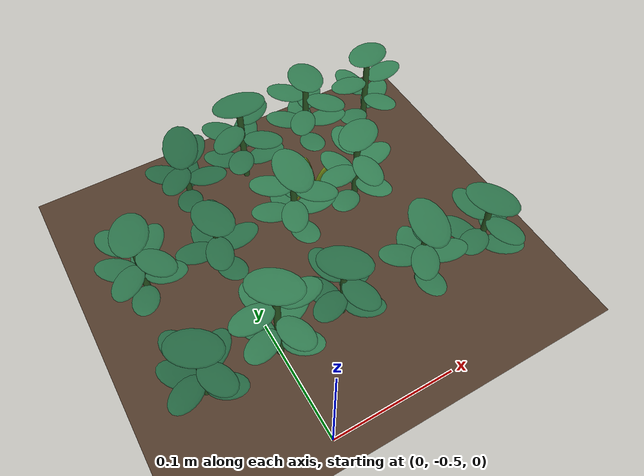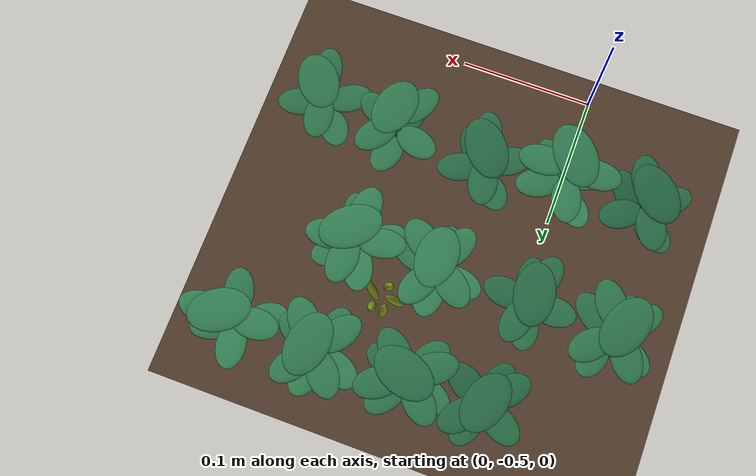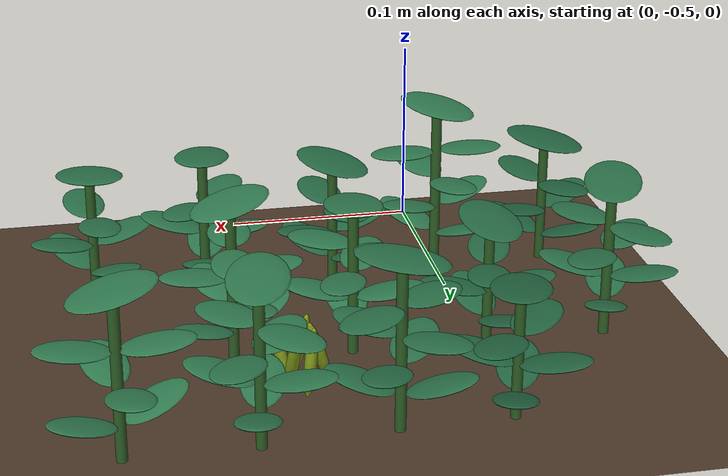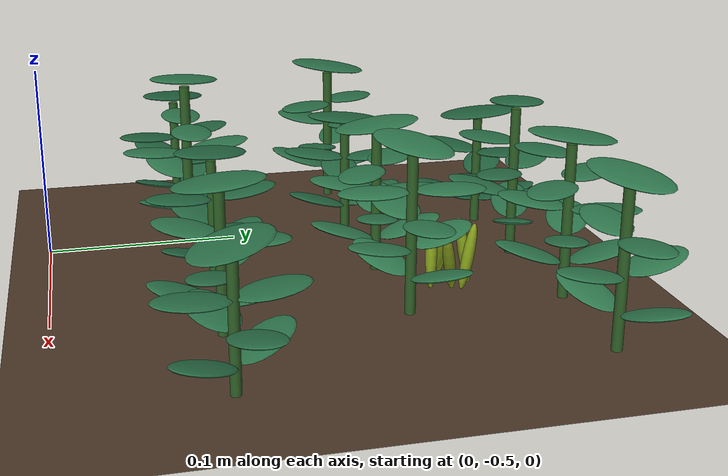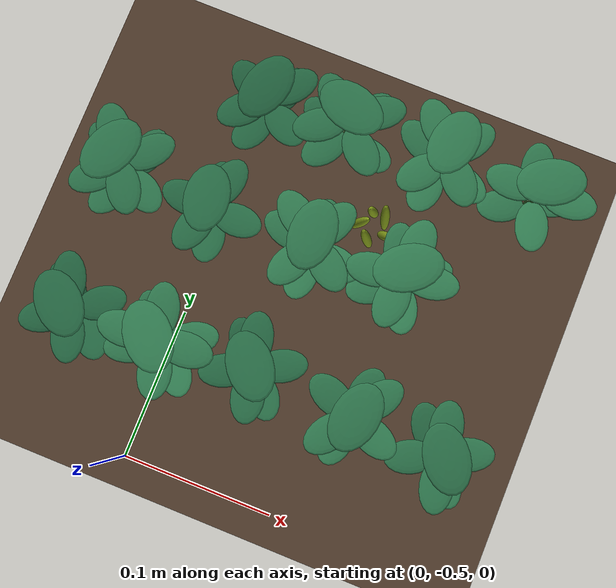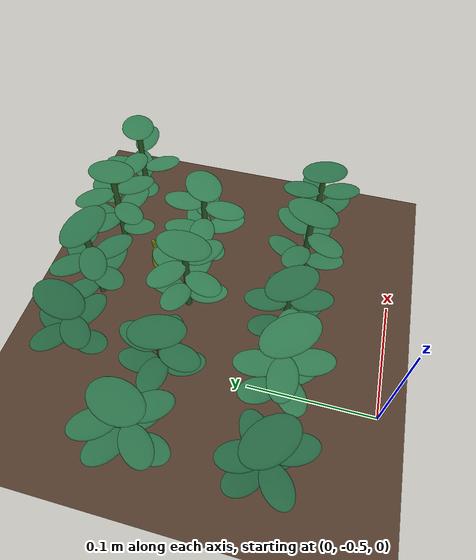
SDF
<sdf version="1.9">
 <world name="jim_field">
  <model name="ground_plane">
   <static>true</static>
   <link name="link">
    <collision name="collision">
     <geometry><plane><normal>0 0 1</normal><size>40 40</size></plane></geometry>
    </collision>
    <visual name="visual">
     <geometry><plane><normal>0 0 1</normal><size>40 40</size></plane></geometry>
     <material>
      <ambient>0.20 0.15 0.11 1</ambient>
      <diffuse>0.30 0.22 0.16 1</diffuse>
      <specular>0.01 0.01 0.01 1</specular>
     </material>
    </visual>
   </link>
  </model>
  <model name="field">
   <static>true</static>
   <pose>0.1837 -0.2516 0 0 0 0</pose>
   <model name="crop_55">
    <static>true</static>
    <pose>-0.2437 -0.1737 0 0 0 0</pose>
    <link name="link">
     <visual name="stem">
      <pose>0 0 0.0324 0 0 0</pose>
      <geometry><cylinder><radius>0.0025</radius><length>0.0649</length></cylinder></geometry>
      <material>
       <ambient>0.10 0.22 0.09 1</ambient>
       <diffuse>0.20 0.40 0.16 1</diffuse>
       <specular>0.05 0.06 0.05 1</specular>
      </material>
     </visual>
     <visual name="leaflet_0_0">
      <pose>0.0128 -0.0119 0.0195 0 -0.300 5.5353</pose>
      <geometry><ellipsoid><radii>0.0170 0.0105 0.0016</radii></ellipsoid></geometry>
      <material>
       <ambient>0.071 0.201 0.111 1</ambient>
       <diffuse>0.131 0.382 0.242 1</diffuse>
       <specular>0.05 0.06 0.05 1</specular>
      </material>
     </visual>
     <visual name="leaflet_0_1">
      <pose>-0.0128 0.0119 0.0195 0 -0.300 8.6769</pose>
      <geometry><ellipsoid><radii>0.0170 0.0105 0.0016</radii></ellipsoid></geometry>
      <material>
       <ambient>0.071 0.201 0.111 1</ambient>
       <diffuse>0.131 0.382 0.242 1</diffuse>
       <specular>0.05 0.06 0.05 1</specular>
      </material>
     </visual>
     <visual name="leaflet_1_0">
      <pose>0.0144 0.0099 0.0329 0 -0.200 6.8853</pose>
      <geometry><ellipsoid><radii>0.0170 0.0105 0.0016</radii></ellipsoid></geometry>
      <material>
       <ambient>0.071 0.201 0.111 1</ambient>
       <diffuse>0.131 0.382 0.242 1</diffuse>
       <specular>0.05 0.06 0.05 1</specular>
      </material>
     </visual>
     <visual name="leaflet_1_1">
      <pose>-0.0144 -0.0099 0.0329 0 -0.200 10.0269</pose>
      <geometry><ellipsoid><radii>0.0170 0.0105 0.0016</radii></ellipsoid></geometry>
      <material>
       <ambient>0.071 0.201 0.111 1</ambient>
       <diffuse>0.131 0.382 0.242 1</diffuse>
       <specular>0.05 0.06 0.05 1</specular>
      </material>
     </visual>
     <visual name="leaflet_2_0">
      <pose>-0.0065 0.0162 0.0463 0 -0.100 8.2353</pose>
      <geometry><ellipsoid><radii>0.0170 0.0105 0.0016</radii></ellipsoid></geometry>
      <material>
       <ambient>0.071 0.201 0.111 1</ambient>
       <diffuse>0.131 0.382 0.242 1</diffuse>
       <specular>0.05 0.06 0.05 1</specular>
      </material>
     </visual>
     <visual name="leaflet_2_1">
      <pose>0.0065 -0.0162 0.0463 0 -0.100 11.3769</pose>
      <geometry><ellipsoid><radii>0.0170 0.0105 0.0016</radii></ellipsoid></geometry>
      <material>
       <ambient>0.071 0.201 0.111 1</ambient>
       <diffuse>0.131 0.382 0.242 1</diffuse>
       <specular>0.05 0.06 0.05 1</specular>
      </material>
     </visual>
     <visual name="leaflet_terminal">
      <pose>0 0 0.0689 0 -0.12 5.5353</pose>
      <geometry><ellipsoid><radii>0.0215 0.0140 0.0018</radii></ellipsoid></geometry>
      <material>
       <ambient>0.071 0.201 0.111 1</ambient>
       <diffuse>0.131 0.382 0.242 1</diffuse>
       <specular>0.05 0.06 0.05 1</specular>
      </material>
     </visual>
    </link>
   </model>
   <model name="crop_56">
    <static>true</static>
    <pose>-0.1836 -0.1723 0 0 0 0</pose>
    <link name="link">
     <visual name="stem">
      <pose>0 0 0.0440 0 0 0</pose>
      <geometry><cylinder><radius>0.0027</radius><length>0.0879</length></cylinder></geometry>
      <material>
       <ambient>0.10 0.22 0.09 1</ambient>
       <diffuse>0.20 0.40 0.16 1</diffuse>
       <specular>0.05 0.06 0.05 1</specular>
      </material>
     </visual>
     <visual name="leaflet_0_0">
      <pose>0.0122 -0.0141 0.0264 0 -0.300 5.4263</pose>
      <geometry><ellipsoid><radii>0.0170 0.0105 0.0016</radii></ellipsoid></geometry>
      <material>
       <ambient>0.094 0.241 0.142 1</ambient>
       <diffuse>0.179 0.461 0.297 1</diffuse>
       <specular>0.05 0.06 0.05 1</specular>
      </material>
     </visual>
     <visual name="leaflet_0_1">
      <pose>-0.0122 0.0141 0.0264 0 -0.300 8.5679</pose>
      <geometry><ellipsoid><radii>0.0170 0.0105 0.0016</radii></ellipsoid></geometry>
      <material>
       <ambient>0.094 0.241 0.142 1</ambient>
       <diffuse>0.179 0.461 0.297 1</diffuse>
       <specular>0.05 0.06 0.05 1</specular>
      </material>
     </visual>
     <visual name="leaflet_1_0">
      <pose>0.0165 0.0088 0.0400 0 -0.200 6.7763</pose>
      <geometry><ellipsoid><radii>0.0170 0.0105 0.0016</radii></ellipsoid></geometry>
      <material>
       <ambient>0.094 0.241 0.142 1</ambient>
       <diffuse>0.179 0.461 0.297 1</diffuse>
       <specular>0.05 0.06 0.05 1</specular>
      </material>
     </visual>
     <visual name="leaflet_1_1">
      <pose>-0.0165 -0.0088 0.0400 0 -0.200 9.9179</pose>
      <geometry><ellipsoid><radii>0.0170 0.0105 0.0016</radii></ellipsoid></geometry>
      <material>
       <ambient>0.094 0.241 0.142 1</ambient>
       <diffuse>0.179 0.461 0.297 1</diffuse>
       <specular>0.05 0.06 0.05 1</specular>
      </material>
     </visual>
     <visual name="leaflet_2_0">
      <pose>-0.0050 0.0180 0.0536 0 -0.100 8.1263</pose>
      <geometry><ellipsoid><radii>0.0170 0.0105 0.0016</radii></ellipsoid></geometry>
      <material>
       <ambient>0.094 0.241 0.142 1</ambient>
       <diffuse>0.179 0.461 0.297 1</diffuse>
       <specular>0.05 0.06 0.05 1</specular>
      </material>
     </visual>
     <visual name="leaflet_2_1">
      <pose>0.0050 -0.0180 0.0536 0 -0.100 11.2679</pose>
      <geometry><ellipsoid><radii>0.0170 0.0105 0.0016</radii></ellipsoid></geometry>
      <material>
       <ambient>0.094 0.241 0.142 1</ambient>
       <diffuse>0.179 0.461 0.297 1</diffuse>
       <specular>0.05 0.06 0.05 1</specular>
      </material>
     </visual>
     <visual name="leaflet_3_0">
      <pose>-0.0187 -0.0010 0.0673 0 0.000 9.4763</pose>
      <geometry><ellipsoid><radii>0.0170 0.0105 0.0016</radii></ellipsoid></geometry>
      <material>
       <ambient>0.094 0.241 0.142 1</ambient>
       <diffuse>0.179 0.461 0.297 1</diffuse>
       <specular>0.05 0.06 0.05 1</specular>
      </material>
     </visual>
     <visual name="leaflet_3_1">
      <pose>0.0187 0.0010 0.0673 0 0.000 12.6179</pose>
      <geometry><ellipsoid><radii>0.0170 0.0105 0.0016</radii></ellipsoid></geometry>
      <material>
       <ambient>0.094 0.241 0.142 1</ambient>
       <diffuse>0.179 0.461 0.297 1</diffuse>
       <specular>0.05 0.06 0.05 1</specular>
      </material>
     </visual>
     <visual name="leaflet_terminal">
      <pose>0 0 0.0919 0 -0.12 5.4263</pose>
      <geometry><ellipsoid><radii>0.0215 0.0140 0.0018</radii></ellipsoid></geometry>
      <material>
       <ambient>0.094 0.241 0.142 1</ambient>
       <diffuse>0.179 0.461 0.297 1</diffuse>
       <specular>0.05 0.06 0.05 1</specular>
      </material>
     </visual>
    </link>
   </model>
   <model name="crop_57">
    <static>true</static>
    <pose>-0.1263 -0.1660 0 0 0 0</pose>
    <link name="link">
     <visual name="stem">
      <pose>0 0 0.0316 0 0 0</pose>
      <geometry><cylinder><radius>0.0025</radius><length>0.0632</length></cylinder></geometry>
      <material>
       <ambient>0.10 0.22 0.09 1</ambient>
       <diffuse>0.20 0.40 0.16 1</diffuse>
       <specular>0.05 0.06 0.05 1</specular>
      </material>
     </visual>
     <visual name="leaflet_0_0">
      <pose>0.0109 -0.0135 0.0190 0 -0.300 5.3920</pose>
      <geometry><ellipsoid><radii>0.0170 0.0105 0.0016</radii></ellipsoid></geometry>
      <material>
       <ambient>0.077 0.211 0.119 1</ambient>
       <diffuse>0.143 0.402 0.256 1</diffuse>
       <specular>0.05 0.06 0.05 1</specular>
      </material>
     </visual>
     <visual name="leaflet_0_1">
      <pose>-0.0109 0.0135 0.0190 0 -0.300 8.5336</pose>
      <geometry><ellipsoid><radii>0.0170 0.0105 0.0016</radii></ellipsoid></geometry>
      <material>
       <ambient>0.077 0.211 0.119 1</ambient>
       <diffuse>0.143 0.402 0.256 1</diffuse>
       <specular>0.05 0.06 0.05 1</specular>
      </material>
     </visual>
     <visual name="leaflet_1_0">
      <pose>0.0156 0.0077 0.0320 0 -0.200 6.7420</pose>
      <geometry><ellipsoid><radii>0.0170 0.0105 0.0016</radii></ellipsoid></geometry>
      <material>
       <ambient>0.077 0.211 0.119 1</ambient>
       <diffuse>0.143 0.402 0.256 1</diffuse>
       <specular>0.05 0.06 0.05 1</specular>
      </material>
     </visual>
     <visual name="leaflet_1_1">
      <pose>-0.0156 -0.0077 0.0320 0 -0.200 9.8836</pose>
      <geometry><ellipsoid><radii>0.0170 0.0105 0.0016</radii></ellipsoid></geometry>
      <material>
       <ambient>0.077 0.211 0.119 1</ambient>
       <diffuse>0.143 0.402 0.256 1</diffuse>
       <specular>0.05 0.06 0.05 1</specular>
      </material>
     </visual>
     <visual name="leaflet_2_0">
      <pose>-0.0041 0.0169 0.0451 0 -0.100 8.0920</pose>
      <geometry><ellipsoid><radii>0.0170 0.0105 0.0016</radii></ellipsoid></geometry>
      <material>
       <ambient>0.077 0.211 0.119 1</ambient>
       <diffuse>0.143 0.402 0.256 1</diffuse>
       <specular>0.05 0.06 0.05 1</specular>
      </material>
     </visual>
     <visual name="leaflet_2_1">
      <pose>0.0041 -0.0169 0.0451 0 -0.100 11.2336</pose>
      <geometry><ellipsoid><radii>0.0170 0.0105 0.0016</radii></ellipsoid></geometry>
      <material>
       <ambient>0.077 0.211 0.119 1</ambient>
       <diffuse>0.143 0.402 0.256 1</diffuse>
       <specular>0.05 0.06 0.05 1</specular>
      </material>
     </visual>
     <visual name="leaflet_terminal">
      <pose>0 0 0.0672 0 -0.12 5.3920</pose>
      <geometry><ellipsoid><radii>0.0215 0.0140 0.0018</radii></ellipsoid></geometry>
      <material>
       <ambient>0.077 0.211 0.119 1</ambient>
       <diffuse>0.143 0.402 0.256 1</diffuse>
       <specular>0.05 0.06 0.05 1</specular>
      </material>
     </visual>
    </link>
   </model>
   <model name="crop_58">
    <static>true</static>
    <pose>-0.0588 -0.1706 0 0 0 0</pose>
    <link name="link">
     <visual name="stem">
      <pose>0 0 0.0346 0 0 0</pose>
      <geometry><cylinder><radius>0.0026</radius><length>0.0692</length></cylinder></geometry>
      <material>
       <ambient>0.10 0.22 0.09 1</ambient>
       <diffuse>0.20 0.40 0.16 1</diffuse>
       <specular>0.05 0.06 0.05 1</specular>
      </material>
     </visual>
     <visual name="leaflet_0_0">
      <pose>0.0030 0.0174 0.0207 0 -0.300 1.4000</pose>
      <geometry><ellipsoid><radii>0.0170 0.0105 0.0016</radii></ellipsoid></geometry>
      <material>
       <ambient>0.090 0.233 0.136 1</ambient>
       <diffuse>0.170 0.446 0.286 1</diffuse>
       <specular>0.05 0.06 0.05 1</specular>
      </material>
     </visual>
     <visual name="leaflet_0_1">
      <pose>-0.0030 -0.0174 0.0207 0 -0.300 4.5416</pose>
      <geometry><ellipsoid><radii>0.0170 0.0105 0.0016</radii></ellipsoid></geometry>
      <material>
       <ambient>0.090 0.233 0.136 1</ambient>
       <diffuse>0.170 0.446 0.286 1</diffuse>
       <specular>0.05 0.06 0.05 1</specular>
      </material>
     </visual>
     <visual name="leaflet_1_0">
      <pose>-0.0163 0.0068 0.0350 0 -0.200 2.7500</pose>
      <geometry><ellipsoid><radii>0.0170 0.0105 0.0016</radii></ellipsoid></geometry>
      <material>
       <ambient>0.090 0.233 0.136 1</ambient>
       <diffuse>0.170 0.446 0.286 1</diffuse>
       <specular>0.05 0.06 0.05 1</specular>
      </material>
     </visual>
     <visual name="leaflet_1_1">
      <pose>0.0163 -0.0068 0.0350 0 -0.200 5.8916</pose>
      <geometry><ellipsoid><radii>0.0170 0.0105 0.0016</radii></ellipsoid></geometry>
      <material>
       <ambient>0.090 0.233 0.136 1</ambient>
       <diffuse>0.170 0.446 0.286 1</diffuse>
       <specular>0.05 0.06 0.05 1</specular>
      </material>
     </visual>
     <visual name="leaflet_2_0">
      <pose>-0.0102 -0.0145 0.0493 0 -0.100 4.1000</pose>
      <geometry><ellipsoid><radii>0.0170 0.0105 0.0016</radii></ellipsoid></geometry>
      <material>
       <ambient>0.090 0.233 0.136 1</ambient>
       <diffuse>0.170 0.446 0.286 1</diffuse>
       <specular>0.05 0.06 0.05 1</specular>
      </material>
     </visual>
     <visual name="leaflet_2_1">
      <pose>0.0102 0.0145 0.0493 0 -0.100 7.2416</pose>
      <geometry><ellipsoid><radii>0.0170 0.0105 0.0016</radii></ellipsoid></geometry>
      <material>
       <ambient>0.090 0.233 0.136 1</ambient>
       <diffuse>0.170 0.446 0.286 1</diffuse>
       <specular>0.05 0.06 0.05 1</specular>
      </material>
     </visual>
     <visual name="leaflet_terminal">
      <pose>0 0 0.0732 0 -0.12 1.4000</pose>
      <geometry><ellipsoid><radii>0.0215 0.0140 0.0018</radii></ellipsoid></geometry>
      <material>
       <ambient>0.090 0.233 0.136 1</ambient>
       <diffuse>0.170 0.446 0.286 1</diffuse>
       <specular>0.05 0.06 0.05 1</specular>
      </material>
     </visual>
    </link>
   </model>
   <model name="crop_59">
    <static>true</static>
    <pose>-0.0010 -0.1731 0 0 0 0</pose>
    <link name="link">
     <visual name="stem">
      <pose>0 0 0.0310 0 0 0</pose>
      <geometry><cylinder><radius>0.0025</radius><length>0.0621</length></cylinder></geometry>
      <material>
       <ambient>0.10 0.22 0.09 1</ambient>
       <diffuse>0.20 0.40 0.16 1</diffuse>
       <specular>0.05 0.06 0.05 1</specular>
      </material>
     </visual>
     <visual name="leaflet_0_0">
      <pose>-0.0103 0.0139 0.0186 0 -0.300 2.2052</pose>
      <geometry><ellipsoid><radii>0.0170 0.0105 0.0016</radii></ellipsoid></geometry>
      <material>
       <ambient>0.085 0.225 0.130 1</ambient>
       <diffuse>0.161 0.431 0.276 1</diffuse>
       <specular>0.05 0.06 0.05 1</specular>
      </material>
     </visual>
     <visual name="leaflet_0_1">
      <pose>0.0103 -0.0139 0.0186 0 -0.300 5.3468</pose>
      <geometry><ellipsoid><radii>0.0170 0.0105 0.0016</radii></ellipsoid></geometry>
      <material>
       <ambient>0.085 0.225 0.130 1</ambient>
       <diffuse>0.161 0.431 0.276 1</diffuse>
       <specular>0.05 0.06 0.05 1</specular>
      </material>
     </visual>
     <visual name="leaflet_1_0">
      <pose>-0.0159 -0.0070 0.0315 0 -0.200 3.5552</pose>
      <geometry><ellipsoid><radii>0.0170 0.0105 0.0016</radii></ellipsoid></geometry>
      <material>
       <ambient>0.085 0.225 0.130 1</ambient>
       <diffuse>0.161 0.431 0.276 1</diffuse>
       <specular>0.05 0.06 0.05 1</specular>
      </material>
     </visual>
     <visual name="leaflet_1_1">
      <pose>0.0159 0.0070 0.0315 0 -0.200 6.6968</pose>
      <geometry><ellipsoid><radii>0.0170 0.0105 0.0016</radii></ellipsoid></geometry>
      <material>
       <ambient>0.085 0.225 0.130 1</ambient>
       <diffuse>0.161 0.431 0.276 1</diffuse>
       <specular>0.05 0.06 0.05 1</specular>
      </material>
     </visual>
     <visual name="leaflet_2_0">
      <pose>0.0033 -0.0170 0.0443 0 -0.100 4.9052</pose>
      <geometry><ellipsoid><radii>0.0170 0.0105 0.0016</radii></ellipsoid></geometry>
      <material>
       <ambient>0.085 0.225 0.130 1</ambient>
       <diffuse>0.161 0.431 0.276 1</diffuse>
       <specular>0.05 0.06 0.05 1</specular>
      </material>
     </visual>
     <visual name="leaflet_2_1">
      <pose>-0.0033 0.0170 0.0443 0 -0.100 8.0468</pose>
      <geometry><ellipsoid><radii>0.0170 0.0105 0.0016</radii></ellipsoid></geometry>
      <material>
       <ambient>0.085 0.225 0.130 1</ambient>
       <diffuse>0.161 0.431 0.276 1</diffuse>
       <specular>0.05 0.06 0.05 1</specular>
      </material>
     </visual>
     <visual name="leaflet_terminal">
      <pose>0 0 0.0661 0 -0.12 2.2052</pose>
      <geometry><ellipsoid><radii>0.0215 0.0140 0.0018</radii></ellipsoid></geometry>
      <material>
       <ambient>0.085 0.225 0.130 1</ambient>
       <diffuse>0.161 0.431 0.276 1</diffuse>
       <specular>0.05 0.06 0.05 1</specular>
      </material>
     </visual>
    </link>
   </model>
   <model name="crop_72">
    <static>true</static>
    <pose>-0.2484 -0.0796 0 0 0 0</pose>
    <link name="link">
     <visual name="stem">
      <pose>0 0 0.0386 0 0 0</pose>
      <geometry><cylinder><radius>0.0026</radius><length>0.0773</length></cylinder></geometry>
      <material>
       <ambient>0.10 0.22 0.09 1</ambient>
       <diffuse>0.20 0.40 0.16 1</diffuse>
       <specular>0.05 0.06 0.05 1</specular>
      </material>
     </visual>
     <visual name="leaflet_0_0">
      <pose>-0.0060 -0.0171 0.0232 0 -0.300 4.3731</pose>
      <geometry><ellipsoid><radii>0.0170 0.0105 0.0016</radii></ellipsoid></geometry>
      <material>
       <ambient>0.085 0.225 0.130 1</ambient>
       <diffuse>0.160 0.429 0.275 1</diffuse>
       <specular>0.05 0.06 0.05 1</specular>
      </material>
     </visual>
     <visual name="leaflet_0_1">
      <pose>0.0060 0.0171 0.0232 0 -0.300 7.5147</pose>
      <geometry><ellipsoid><radii>0.0170 0.0105 0.0016</radii></ellipsoid></geometry>
      <material>
       <ambient>0.085 0.225 0.130 1</ambient>
       <diffuse>0.160 0.429 0.275 1</diffuse>
       <specular>0.05 0.06 0.05 1</specular>
      </material>
     </visual>
     <visual name="leaflet_1_0">
      <pose>0.0154 -0.0096 0.0352 0 -0.200 5.7231</pose>
      <geometry><ellipsoid><radii>0.0170 0.0105 0.0016</radii></ellipsoid></geometry>
      <material>
       <ambient>0.085 0.225 0.130 1</ambient>
       <diffuse>0.160 0.429 0.275 1</diffuse>
       <specular>0.05 0.06 0.05 1</specular>
      </material>
     </visual>
     <visual name="leaflet_1_1">
      <pose>-0.0154 0.0096 0.0352 0 -0.200 8.8647</pose>
      <geometry><ellipsoid><radii>0.0170 0.0105 0.0016</radii></ellipsoid></geometry>
      <material>
       <ambient>0.085 0.225 0.130 1</ambient>
       <diffuse>0.160 0.429 0.275 1</diffuse>
       <specular>0.05 0.06 0.05 1</specular>
      </material>
     </visual>
     <visual name="leaflet_2_0">
      <pose>0.0128 0.0129 0.0471 0 -0.100 7.0731</pose>
      <geometry><ellipsoid><radii>0.0170 0.0105 0.0016</radii></ellipsoid></geometry>
      <material>
       <ambient>0.085 0.225 0.130 1</ambient>
       <diffuse>0.160 0.429 0.275 1</diffuse>
       <specular>0.05 0.06 0.05 1</specular>
      </material>
     </visual>
     <visual name="leaflet_2_1">
      <pose>-0.0128 -0.0129 0.0471 0 -0.100 10.2147</pose>
      <geometry><ellipsoid><radii>0.0170 0.0105 0.0016</radii></ellipsoid></geometry>
      <material>
       <ambient>0.085 0.225 0.130 1</ambient>
       <diffuse>0.160 0.429 0.275 1</diffuse>
       <specular>0.05 0.06 0.05 1</specular>
      </material>
     </visual>
     <visual name="leaflet_3_0">
      <pose>-0.0098 0.0153 0.0591 0 0.000 8.4231</pose>
      <geometry><ellipsoid><radii>0.0170 0.0105 0.0016</radii></ellipsoid></geometry>
      <material>
       <ambient>0.085 0.225 0.130 1</ambient>
       <diffuse>0.160 0.429 0.275 1</diffuse>
       <specular>0.05 0.06 0.05 1</specular>
      </material>
     </visual>
     <visual name="leaflet_3_1">
      <pose>0.0098 -0.0153 0.0591 0 0.000 11.5647</pose>
      <geometry><ellipsoid><radii>0.0170 0.0105 0.0016</radii></ellipsoid></geometry>
      <material>
       <ambient>0.085 0.225 0.130 1</ambient>
       <diffuse>0.160 0.429 0.275 1</diffuse>
       <specular>0.05 0.06 0.05 1</specular>
      </material>
     </visual>
     <visual name="leaflet_terminal">
      <pose>0 0 0.0813 0 -0.12 4.3731</pose>
      <geometry><ellipsoid><radii>0.0215 0.0140 0.0018</radii></ellipsoid></geometry>
      <material>
       <ambient>0.085 0.225 0.130 1</ambient>
       <diffuse>0.160 0.429 0.275 1</diffuse>
       <specular>0.05 0.06 0.05 1</specular>
      </material>
     </visual>
    </link>
   </model>
   <model name="crop_73">
    <static>true</static>
    <pose>-0.1886 -0.0828 0 0 0 0</pose>
    <link name="link">
     <visual name="stem">
      <pose>0 0 0.0301 0 0 0</pose>
      <geometry><cylinder><radius>0.0025</radius><length>0.0602</length></cylinder></geometry>
      <material>
       <ambient>0.10 0.22 0.09 1</ambient>
       <diffuse>0.20 0.40 0.16 1</diffuse>
       <specular>0.05 0.06 0.05 1</specular>
      </material>
     </visual>
     <visual name="leaflet_0_0">
      <pose>0.0030 -0.0169 0.0180 0 -0.300 4.8885</pose>
      <geometry><ellipsoid><radii>0.0170 0.0105 0.0016</radii></ellipsoid></geometry>
      <material>
       <ambient>0.077 0.211 0.119 1</ambient>
       <diffuse>0.143 0.402 0.255 1</diffuse>
       <specular>0.05 0.06 0.05 1</specular>
      </material>
     </visual>
     <visual name="leaflet_0_1">
      <pose>-0.0030 0.0169 0.0180 0 -0.300 8.0301</pose>
      <geometry><ellipsoid><radii>0.0170 0.0105 0.0016</radii></ellipsoid></geometry>
      <material>
       <ambient>0.077 0.211 0.119 1</ambient>
       <diffuse>0.143 0.402 0.255 1</diffuse>
       <specular>0.05 0.06 0.05 1</specular>
      </material>
     </visual>
     <visual name="leaflet_1_0">
      <pose>0.0172 -0.0008 0.0305 0 -0.200 6.2385</pose>
      <geometry><ellipsoid><radii>0.0170 0.0105 0.0016</radii></ellipsoid></geometry>
      <material>
       <ambient>0.077 0.211 0.119 1</ambient>
       <diffuse>0.143 0.402 0.255 1</diffuse>
       <specular>0.05 0.06 0.05 1</specular>
      </material>
     </visual>
     <visual name="leaflet_1_1">
      <pose>-0.0172 0.0008 0.0305 0 -0.200 9.3801</pose>
      <geometry><ellipsoid><radii>0.0170 0.0105 0.0016</radii></ellipsoid></geometry>
      <material>
       <ambient>0.077 0.211 0.119 1</ambient>
       <diffuse>0.143 0.402 0.255 1</diffuse>
       <specular>0.05 0.06 0.05 1</specular>
      </material>
     </visual>
     <visual name="leaflet_2_0">
      <pose>0.0045 0.0166 0.0429 0 -0.100 7.5885</pose>
      <geometry><ellipsoid><radii>0.0170 0.0105 0.0016</radii></ellipsoid></geometry>
      <material>
       <ambient>0.077 0.211 0.119 1</ambient>
       <diffuse>0.143 0.402 0.255 1</diffuse>
       <specular>0.05 0.06 0.05 1</specular>
      </material>
     </visual>
     <visual name="leaflet_2_1">
      <pose>-0.0045 -0.0166 0.0429 0 -0.100 10.7301</pose>
      <geometry><ellipsoid><radii>0.0170 0.0105 0.0016</radii></ellipsoid></geometry>
      <material>
       <ambient>0.077 0.211 0.119 1</ambient>
       <diffuse>0.143 0.402 0.255 1</diffuse>
       <specular>0.05 0.06 0.05 1</specular>
      </material>
     </visual>
     <visual name="leaflet_terminal">
      <pose>0 0 0.0642 0 -0.12 4.8885</pose>
      <geometry><ellipsoid><radii>0.0215 0.0140 0.0018</radii></ellipsoid></geometry>
      <material>
       <ambient>0.077 0.211 0.119 1</ambient>
       <diffuse>0.143 0.402 0.255 1</diffuse>
       <specular>0.05 0.06 0.05 1</specular>
      </material>
     </visual>
    </link>
   </model>
   <model name="crop_74">
    <static>true</static>
    <pose>-0.1210 -0.0823 0 0 0 0</pose>
    <link name="link">
     <visual name="stem">
      <pose>0 0 0.0370 0 0 0</pose>
      <geometry><cylinder><radius>0.0026</radius><length>0.0739</length></cylinder></geometry>
      <material>
       <ambient>0.10 0.22 0.09 1</ambient>
       <diffuse>0.20 0.40 0.16 1</diffuse>
       <specular>0.05 0.06 0.05 1</specular>
      </material>
     </visual>
     <visual name="leaflet_0_0">
      <pose>0.0001 0.0179 0.0222 0 -0.300 1.5650</pose>
      <geometry><ellipsoid><radii>0.0170 0.0105 0.0016</radii></ellipsoid></geometry>
      <material>
       <ambient>0.095 0.242 0.144 1</ambient>
       <diffuse>0.181 0.465 0.299 1</diffuse>
       <specular>0.05 0.06 0.05 1</specular>
      </material>
     </visual>
     <visual name="leaflet_0_1">
      <pose>-0.0001 -0.0179 0.0222 0 -0.300 4.7066</pose>
      <geometry><ellipsoid><radii>0.0170 0.0105 0.0016</radii></ellipsoid></geometry>
      <material>
       <ambient>0.095 0.242 0.144 1</ambient>
       <diffuse>0.181 0.465 0.299 1</diffuse>
       <specular>0.05 0.06 0.05 1</specular>
      </material>
     </visual>
     <visual name="leaflet_1_0">
      <pose>-0.0175 0.0040 0.0336 0 -0.200 2.9150</pose>
      <geometry><ellipsoid><radii>0.0170 0.0105 0.0016</radii></ellipsoid></geometry>
      <material>
       <ambient>0.095 0.242 0.144 1</ambient>
       <diffuse>0.181 0.465 0.299 1</diffuse>
       <specular>0.05 0.06 0.05 1</specular>
      </material>
     </visual>
     <visual name="leaflet_1_1">
      <pose>0.0175 -0.0040 0.0336 0 -0.200 6.0566</pose>
      <geometry><ellipsoid><radii>0.0170 0.0105 0.0016</radii></ellipsoid></geometry>
      <material>
       <ambient>0.095 0.242 0.144 1</ambient>
       <diffuse>0.181 0.465 0.299 1</diffuse>
       <specular>0.05 0.06 0.05 1</specular>
      </material>
     </visual>
     <visual name="leaflet_2_0">
      <pose>-0.0078 -0.0162 0.0451 0 -0.100 4.2650</pose>
      <geometry><ellipsoid><radii>0.0170 0.0105 0.0016</radii></ellipsoid></geometry>
      <material>
       <ambient>0.095 0.242 0.144 1</ambient>
       <diffuse>0.181 0.465 0.299 1</diffuse>
       <specular>0.05 0.06 0.05 1</specular>
      </material>
     </visual>
     <visual name="leaflet_2_1">
      <pose>0.0078 0.0162 0.0451 0 -0.100 7.4066</pose>
      <geometry><ellipsoid><radii>0.0170 0.0105 0.0016</radii></ellipsoid></geometry>
      <material>
       <ambient>0.095 0.242 0.144 1</ambient>
       <diffuse>0.181 0.465 0.299 1</diffuse>
       <specular>0.05 0.06 0.05 1</specular>
      </material>
     </visual>
     <visual name="leaflet_3_0">
      <pose>0.0141 -0.0111 0.0566 0 0.000 5.6150</pose>
      <geometry><ellipsoid><radii>0.0170 0.0105 0.0016</radii></ellipsoid></geometry>
      <material>
       <ambient>0.095 0.242 0.144 1</ambient>
       <diffuse>0.181 0.465 0.299 1</diffuse>
       <specular>0.05 0.06 0.05 1</specular>
      </material>
     </visual>
     <visual name="leaflet_3_1">
      <pose>-0.0141 0.0111 0.0566 0 0.000 8.7566</pose>
      <geometry><ellipsoid><radii>0.0170 0.0105 0.0016</radii></ellipsoid></geometry>
      <material>
       <ambient>0.095 0.242 0.144 1</ambient>
       <diffuse>0.181 0.465 0.299 1</diffuse>
       <specular>0.05 0.06 0.05 1</specular>
      </material>
     </visual>
     <visual name="leaflet_terminal">
      <pose>0 0 0.0779 0 -0.12 1.5650</pose>
      <geometry><ellipsoid><radii>0.0215 0.0140 0.0018</radii></ellipsoid></geometry>
      <material>
       <ambient>0.095 0.242 0.144 1</ambient>
       <diffuse>0.181 0.465 0.299 1</diffuse>
       <specular>0.05 0.06 0.05 1</specular>
      </material>
     </visual>
    </link>
   </model>
   <model name="crop_75">
    <static>true</static>
    <pose>-0.0624 -0.0808 0 0 0 0</pose>
    <link name="link">
     <visual name="stem">
      <pose>0 0 0.0400 0 0 0</pose>
      <geometry><cylinder><radius>0.0026</radius><length>0.0800</length></cylinder></geometry>
      <material>
       <ambient>0.10 0.22 0.09 1</ambient>
       <diffuse>0.20 0.40 0.16 1</diffuse>
       <specular>0.05 0.06 0.05 1</specular>
      </material>
     </visual>
     <visual name="leaflet_0_0">
      <pose>-0.0151 -0.0103 0.0240 0 -0.300 3.7394</pose>
      <geometry><ellipsoid><radii>0.0170 0.0105 0.0016</radii></ellipsoid></geometry>
      <material>
       <ambient>0.099 0.248 0.148 1</ambient>
       <diffuse>0.187 0.475 0.307 1</diffuse>
       <specular>0.05 0.06 0.05 1</specular>
      </material>
     </visual>
     <visual name="leaflet_0_1">
      <pose>0.0151 0.0103 0.0240 0 -0.300 6.8810</pose>
      <geometry><ellipsoid><radii>0.0170 0.0105 0.0016</radii></ellipsoid></geometry>
      <material>
       <ambient>0.099 0.248 0.148 1</ambient>
       <diffuse>0.187 0.475 0.307 1</diffuse>
       <specular>0.05 0.06 0.05 1</specular>
      </material>
     </visual>
     <visual name="leaflet_1_0">
      <pose>0.0067 -0.0170 0.0364 0 -0.200 5.0894</pose>
      <geometry><ellipsoid><radii>0.0170 0.0105 0.0016</radii></ellipsoid></geometry>
      <material>
       <ambient>0.099 0.248 0.148 1</ambient>
       <diffuse>0.187 0.475 0.307 1</diffuse>
       <specular>0.05 0.06 0.05 1</specular>
      </material>
     </visual>
     <visual name="leaflet_1_1">
      <pose>-0.0067 0.0170 0.0364 0 -0.200 8.2310</pose>
      <geometry><ellipsoid><radii>0.0170 0.0105 0.0016</radii></ellipsoid></geometry>
      <material>
       <ambient>0.099 0.248 0.148 1</ambient>
       <diffuse>0.187 0.475 0.307 1</diffuse>
       <specular>0.05 0.06 0.05 1</specular>
      </material>
     </visual>
     <visual name="leaflet_2_0">
      <pose>0.0180 0.0028 0.0488 0 -0.100 6.4394</pose>
      <geometry><ellipsoid><radii>0.0170 0.0105 0.0016</radii></ellipsoid></geometry>
      <material>
       <ambient>0.099 0.248 0.148 1</ambient>
       <diffuse>0.187 0.475 0.307 1</diffuse>
       <specular>0.05 0.06 0.05 1</specular>
      </material>
     </visual>
     <visual name="leaflet_2_1">
      <pose>-0.0180 -0.0028 0.0488 0 -0.100 9.5810</pose>
      <geometry><ellipsoid><radii>0.0170 0.0105 0.0016</radii></ellipsoid></geometry>
      <material>
       <ambient>0.099 0.248 0.148 1</ambient>
       <diffuse>0.187 0.475 0.307 1</diffuse>
       <specular>0.05 0.06 0.05 1</specular>
      </material>
     </visual>
     <visual name="leaflet_3_0">
      <pose>0.0012 0.0182 0.0612 0 0.000 7.7894</pose>
      <geometry><ellipsoid><radii>0.0170 0.0105 0.0016</radii></ellipsoid></geometry>
      <material>
       <ambient>0.099 0.248 0.148 1</ambient>
       <diffuse>0.187 0.475 0.307 1</diffuse>
       <specular>0.05 0.06 0.05 1</specular>
      </material>
     </visual>
     <visual name="leaflet_3_1">
      <pose>-0.0012 -0.0182 0.0612 0 0.000 10.9310</pose>
      <geometry><ellipsoid><radii>0.0170 0.0105 0.0016</radii></ellipsoid></geometry>
      <material>
       <ambient>0.099 0.248 0.148 1</ambient>
       <diffuse>0.187 0.475 0.307 1</diffuse>
       <specular>0.05 0.06 0.05 1</specular>
      </material>
     </visual>
     <visual name="leaflet_terminal">
      <pose>0 0 0.0840 0 -0.12 3.7394</pose>
      <geometry><ellipsoid><radii>0.0215 0.0140 0.0018</radii></ellipsoid></geometry>
      <material>
       <ambient>0.099 0.248 0.148 1</ambient>
       <diffuse>0.187 0.475 0.307 1</diffuse>
       <specular>0.05 0.06 0.05 1</specular>
      </material>
     </visual>
    </link>
   </model>
   <model name="crop_90">
    <static>true</static>
    <pose>-0.1814 -0.0064 0 0 0 0</pose>
    <link name="link">
     <visual name="stem">
      <pose>0 0 0.0305 0 0 0</pose>
      <geometry><cylinder><radius>0.0025</radius><length>0.0609</length></cylinder></geometry>
      <material>
       <ambient>0.10 0.22 0.09 1</ambient>
       <diffuse>0.20 0.40 0.16 1</diffuse>
       <specular>0.05 0.06 0.05 1</specular>
      </material>
     </visual>
     <visual name="leaflet_0_0">
      <pose>0.0054 0.0164 0.0183 0 -0.300 1.2520</pose>
      <geometry><ellipsoid><radii>0.0170 0.0105 0.0016</radii></ellipsoid></geometry>
      <material>
       <ambient>0.071 0.201 0.111 1</ambient>
       <diffuse>0.131 0.382 0.241 1</diffuse>
       <specular>0.05 0.06 0.05 1</specular>
      </material>
     </visual>
     <visual name="leaflet_0_1">
      <pose>-0.0054 -0.0164 0.0183 0 -0.300 4.3936</pose>
      <geometry><ellipsoid><radii>0.0170 0.0105 0.0016</radii></ellipsoid></geometry>
      <material>
       <ambient>0.071 0.201 0.111 1</ambient>
       <diffuse>0.131 0.382 0.241 1</diffuse>
       <specular>0.05 0.06 0.05 1</specular>
      </material>
     </visual>
     <visual name="leaflet_1_0">
      <pose>-0.0148 0.0089 0.0309 0 -0.200 2.6020</pose>
      <geometry><ellipsoid><radii>0.0170 0.0105 0.0016</radii></ellipsoid></geometry>
      <material>
       <ambient>0.071 0.201 0.111 1</ambient>
       <diffuse>0.131 0.382 0.241 1</diffuse>
       <specular>0.05 0.06 0.05 1</specular>
      </material>
     </visual>
     <visual name="leaflet_1_1">
      <pose>0.0148 -0.0089 0.0309 0 -0.200 5.7436</pose>
      <geometry><ellipsoid><radii>0.0170 0.0105 0.0016</radii></ellipsoid></geometry>
      <material>
       <ambient>0.071 0.201 0.111 1</ambient>
       <diffuse>0.131 0.382 0.241 1</diffuse>
       <specular>0.05 0.06 0.05 1</specular>
      </material>
     </visual>
     <visual name="leaflet_2_0">
      <pose>-0.0119 -0.0125 0.0435 0 -0.100 3.9520</pose>
      <geometry><ellipsoid><radii>0.0170 0.0105 0.0016</radii></ellipsoid></geometry>
      <material>
       <ambient>0.071 0.201 0.111 1</ambient>
       <diffuse>0.131 0.382 0.241 1</diffuse>
       <specular>0.05 0.06 0.05 1</specular>
      </material>
     </visual>
     <visual name="leaflet_2_1">
      <pose>0.0119 0.0125 0.0435 0 -0.100 7.0936</pose>
      <geometry><ellipsoid><radii>0.0170 0.0105 0.0016</radii></ellipsoid></geometry>
      <material>
       <ambient>0.071 0.201 0.111 1</ambient>
       <diffuse>0.131 0.382 0.241 1</diffuse>
       <specular>0.05 0.06 0.05 1</specular>
      </material>
     </visual>
     <visual name="leaflet_terminal">
      <pose>0 0 0.0649 0 -0.12 1.2520</pose>
      <geometry><ellipsoid><radii>0.0215 0.0140 0.0018</radii></ellipsoid></geometry>
      <material>
       <ambient>0.071 0.201 0.111 1</ambient>
       <diffuse>0.131 0.382 0.241 1</diffuse>
       <specular>0.05 0.06 0.05 1</specular>
      </material>
     </visual>
    </link>
   </model>
   <model name="crop_91">
    <static>true</static>
    <pose>-0.1275 -0.0052 0 0 0 0</pose>
    <link name="link">
     <visual name="stem">
      <pose>0 0 0.0400 0 0 0</pose>
      <geometry><cylinder><radius>0.0026</radius><length>0.0801</length></cylinder></geometry>
      <material>
       <ambient>0.10 0.22 0.09 1</ambient>
       <diffuse>0.20 0.40 0.16 1</diffuse>
       <specular>0.05 0.06 0.05 1</specular>
      </material>
     </visual>
     <visual name="leaflet_0_0">
      <pose>0.0173 -0.0059 0.0240 0 -0.300 5.9519</pose>
      <geometry><ellipsoid><radii>0.0170 0.0105 0.0016</radii></ellipsoid></geometry>
      <material>
       <ambient>0.084 0.223 0.129 1</ambient>
       <diffuse>0.158 0.427 0.273 1</diffuse>
       <specular>0.05 0.06 0.05 1</specular>
      </material>
     </visual>
     <visual name="leaflet_0_1">
      <pose>-0.0173 0.0059 0.0240 0 -0.300 9.0935</pose>
      <geometry><ellipsoid><radii>0.0170 0.0105 0.0016</radii></ellipsoid></geometry>
      <material>
       <ambient>0.084 0.223 0.129 1</ambient>
       <diffuse>0.158 0.427 0.273 1</diffuse>
       <specular>0.05 0.06 0.05 1</specular>
      </material>
     </visual>
     <visual name="leaflet_1_0">
      <pose>0.0096 0.0156 0.0364 0 -0.200 7.3019</pose>
      <geometry><ellipsoid><radii>0.0170 0.0105 0.0016</radii></ellipsoid></geometry>
      <material>
       <ambient>0.084 0.223 0.129 1</ambient>
       <diffuse>0.158 0.427 0.273 1</diffuse>
       <specular>0.05 0.06 0.05 1</specular>
      </material>
     </visual>
     <visual name="leaflet_1_1">
      <pose>-0.0096 -0.0156 0.0364 0 -0.200 10.4435</pose>
      <geometry><ellipsoid><radii>0.0170 0.0105 0.0016</radii></ellipsoid></geometry>
      <material>
       <ambient>0.084 0.223 0.129 1</ambient>
       <diffuse>0.158 0.427 0.273 1</diffuse>
       <specular>0.05 0.06 0.05 1</specular>
      </material>
     </visual>
     <visual name="leaflet_2_0">
      <pose>-0.0131 0.0128 0.0489 0 -0.100 8.6519</pose>
      <geometry><ellipsoid><radii>0.0170 0.0105 0.0016</radii></ellipsoid></geometry>
      <material>
       <ambient>0.084 0.223 0.129 1</ambient>
       <diffuse>0.158 0.427 0.273 1</diffuse>
       <specular>0.05 0.06 0.05 1</specular>
      </material>
     </visual>
     <visual name="leaflet_2_1">
      <pose>0.0131 -0.0128 0.0489 0 -0.100 11.7935</pose>
      <geometry><ellipsoid><radii>0.0170 0.0105 0.0016</radii></ellipsoid></geometry>
      <material>
       <ambient>0.084 0.223 0.129 1</ambient>
       <diffuse>0.158 0.427 0.273 1</diffuse>
       <specular>0.05 0.06 0.05 1</specular>
      </material>
     </visual>
     <visual name="leaflet_3_0">
      <pose>-0.0153 -0.0100 0.0613 0 0.000 10.0019</pose>
      <geometry><ellipsoid><radii>0.0170 0.0105 0.0016</radii></ellipsoid></geometry>
      <material>
       <ambient>0.084 0.223 0.129 1</ambient>
       <diffuse>0.158 0.427 0.273 1</diffuse>
       <specular>0.05 0.06 0.05 1</specular>
      </material>
     </visual>
     <visual name="leaflet_3_1">
      <pose>0.0153 0.0100 0.0613 0 0.000 13.1435</pose>
      <geometry><ellipsoid><radii>0.0170 0.0105 0.0016</radii></ellipsoid></geometry>
      <material>
       <ambient>0.084 0.223 0.129 1</ambient>
       <diffuse>0.158 0.427 0.273 1</diffuse>
       <specular>0.05 0.06 0.05 1</specular>
      </material>
     </visual>
     <visual name="leaflet_terminal">
      <pose>0 0 0.0841 0 -0.12 5.9519</pose>
      <geometry><ellipsoid><radii>0.0215 0.0140 0.0018</radii></ellipsoid></geometry>
      <material>
       <ambient>0.084 0.223 0.129 1</ambient>
       <diffuse>0.158 0.427 0.273 1</diffuse>
       <specular>0.05 0.06 0.05 1</specular>
      </material>
     </visual>
    </link>
   </model>
   <model name="crop_92">
    <static>true</static>
    <pose>-0.0644 -0.0018 0 0 0 0</pose>
    <link name="link">
     <visual name="stem">
      <pose>0 0 0.0391 0 0 0</pose>
      <geometry><cylinder><radius>0.0026</radius><length>0.0782</length></cylinder></geometry>
      <material>
       <ambient>0.10 0.22 0.09 1</ambient>
       <diffuse>0.20 0.40 0.16 1</diffuse>
       <specular>0.05 0.06 0.05 1</specular>
      </material>
     </visual>
     <visual name="leaflet_0_0">
      <pose>-0.0036 -0.0178 0.0235 0 -0.300 4.5113</pose>
      <geometry><ellipsoid><radii>0.0170 0.0105 0.0016</radii></ellipsoid></geometry>
      <material>
       <ambient>0.093 0.239 0.141 1</ambient>
       <diffuse>0.177 0.458 0.294 1</diffuse>
       <specular>0.05 0.06 0.05 1</specular>
      </material>
     </visual>
     <visual name="leaflet_0_1">
      <pose>0.0036 0.0178 0.0235 0 -0.300 7.6529</pose>
      <geometry><ellipsoid><radii>0.0170 0.0105 0.0016</radii></ellipsoid></geometry>
      <material>
       <ambient>0.093 0.239 0.141 1</ambient>
       <diffuse>0.177 0.458 0.294 1</diffuse>
       <specular>0.05 0.06 0.05 1</specular>
      </material>
     </visual>
     <visual name="leaflet_1_0">
      <pose>0.0166 -0.0074 0.0356 0 -0.200 5.8613</pose>
      <geometry><ellipsoid><radii>0.0170 0.0105 0.0016</radii></ellipsoid></geometry>
      <material>
       <ambient>0.093 0.239 0.141 1</ambient>
       <diffuse>0.177 0.458 0.294 1</diffuse>
       <specular>0.05 0.06 0.05 1</specular>
      </material>
     </visual>
     <visual name="leaflet_1_1">
      <pose>-0.0166 0.0074 0.0356 0 -0.200 9.0029</pose>
      <geometry><ellipsoid><radii>0.0170 0.0105 0.0016</radii></ellipsoid></geometry>
      <material>
       <ambient>0.093 0.239 0.141 1</ambient>
       <diffuse>0.177 0.458 0.294 1</diffuse>
       <specular>0.05 0.06 0.05 1</specular>
      </material>
     </visual>
     <visual name="leaflet_2_0">
      <pose>0.0109 0.0145 0.0477 0 -0.100 7.2113</pose>
      <geometry><ellipsoid><radii>0.0170 0.0105 0.0016</radii></ellipsoid></geometry>
      <material>
       <ambient>0.093 0.239 0.141 1</ambient>
       <diffuse>0.177 0.458 0.294 1</diffuse>
       <specular>0.05 0.06 0.05 1</specular>
      </material>
     </visual>
     <visual name="leaflet_2_1">
      <pose>-0.0109 -0.0145 0.0477 0 -0.100 10.3529</pose>
      <geometry><ellipsoid><radii>0.0170 0.0105 0.0016</radii></ellipsoid></geometry>
      <material>
       <ambient>0.093 0.239 0.141 1</ambient>
       <diffuse>0.177 0.458 0.294 1</diffuse>
       <specular>0.05 0.06 0.05 1</specular>
      </material>
     </visual>
     <visual name="leaflet_3_0">
      <pose>-0.0118 0.0138 0.0598 0 0.000 8.5613</pose>
      <geometry><ellipsoid><radii>0.0170 0.0105 0.0016</radii></ellipsoid></geometry>
      <material>
       <ambient>0.093 0.239 0.141 1</ambient>
       <diffuse>0.177 0.458 0.294 1</diffuse>
       <specular>0.05 0.06 0.05 1</specular>
      </material>
     </visual>
     <visual name="leaflet_3_1">
      <pose>0.0118 -0.0138 0.0598 0 0.000 11.7029</pose>
      <geometry><ellipsoid><radii>0.0170 0.0105 0.0016</radii></ellipsoid></geometry>
      <material>
       <ambient>0.093 0.239 0.141 1</ambient>
       <diffuse>0.177 0.458 0.294 1</diffuse>
       <specular>0.05 0.06 0.05 1</specular>
      </material>
     </visual>
     <visual name="leaflet_terminal">
      <pose>0 0 0.0822 0 -0.12 4.5113</pose>
      <geometry><ellipsoid><radii>0.0215 0.0140 0.0018</radii></ellipsoid></geometry>
      <material>
       <ambient>0.093 0.239 0.141 1</ambient>
       <diffuse>0.177 0.458 0.294 1</diffuse>
       <specular>0.05 0.06 0.05 1</specular>
      </material>
     </visual>
    </link>
   </model>
   <model name="crop_93">
    <static>true</static>
    <pose>-0.0034 -0.0026 0 0 0 0</pose>
    <link name="link">
     <visual name="stem">
      <pose>0 0 0.0387 0 0 0</pose>
      <geometry><cylinder><radius>0.0026</radius><length>0.0774</length></cylinder></geometry>
      <material>
       <ambient>0.10 0.22 0.09 1</ambient>
       <diffuse>0.20 0.40 0.16 1</diffuse>
       <specular>0.05 0.06 0.05 1</specular>
      </material>
     </visual>
     <visual name="leaflet_0_0">
      <pose>-0.0161 -0.0083 0.0232 0 -0.300 3.6160</pose>
      <geometry><ellipsoid><radii>0.0170 0.0105 0.0016</radii></ellipsoid></geometry>
      <material>
       <ambient>0.097 0.245 0.146 1</ambient>
       <diffuse>0.184 0.471 0.304 1</diffuse>
       <specular>0.05 0.06 0.05 1</specular>
      </material>
     </visual>
     <visual name="leaflet_0_1">
      <pose>0.0161 0.0083 0.0232 0 -0.300 6.7576</pose>
      <geometry><ellipsoid><radii>0.0170 0.0105 0.0016</radii></ellipsoid></geometry>
      <material>
       <ambient>0.097 0.245 0.146 1</ambient>
       <diffuse>0.184 0.471 0.304 1</diffuse>
       <specular>0.05 0.06 0.05 1</specular>
      </material>
     </visual>
     <visual name="leaflet_1_0">
      <pose>0.0045 -0.0175 0.0392 0 -0.200 4.9660</pose>
      <geometry><ellipsoid><radii>0.0170 0.0105 0.0016</radii></ellipsoid></geometry>
      <material>
       <ambient>0.097 0.245 0.146 1</ambient>
       <diffuse>0.184 0.471 0.304 1</diffuse>
       <specular>0.05 0.06 0.05 1</specular>
      </material>
     </visual>
     <visual name="leaflet_1_1">
      <pose>-0.0045 0.0175 0.0392 0 -0.200 8.1076</pose>
      <geometry><ellipsoid><radii>0.0170 0.0105 0.0016</radii></ellipsoid></geometry>
      <material>
       <ambient>0.097 0.245 0.146 1</ambient>
       <diffuse>0.184 0.471 0.304 1</diffuse>
       <specular>0.05 0.06 0.05 1</specular>
      </material>
     </visual>
     <visual name="leaflet_2_0">
      <pose>0.0181 0.0006 0.0552 0 -0.100 6.3160</pose>
      <geometry><ellipsoid><radii>0.0170 0.0105 0.0016</radii></ellipsoid></geometry>
      <material>
       <ambient>0.097 0.245 0.146 1</ambient>
       <diffuse>0.184 0.471 0.304 1</diffuse>
       <specular>0.05 0.06 0.05 1</specular>
      </material>
     </visual>
     <visual name="leaflet_2_1">
      <pose>-0.0181 -0.0006 0.0552 0 -0.100 9.4576</pose>
      <geometry><ellipsoid><radii>0.0170 0.0105 0.0016</radii></ellipsoid></geometry>
      <material>
       <ambient>0.097 0.245 0.146 1</ambient>
       <diffuse>0.184 0.471 0.304 1</diffuse>
       <specular>0.05 0.06 0.05 1</specular>
      </material>
     </visual>
     <visual name="leaflet_terminal">
      <pose>0 0 0.0814 0 -0.12 3.6160</pose>
      <geometry><ellipsoid><radii>0.0215 0.0140 0.0018</radii></ellipsoid></geometry>
      <material>
       <ambient>0.097 0.245 0.146 1</ambient>
       <diffuse>0.184 0.471 0.304 1</diffuse>
       <specular>0.05 0.06 0.05 1</specular>
      </material>
     </visual>
    </link>
   </model>
   <model name="weed_5">
    <static>true</static>
    <pose>-0.0899 -0.0523 0 0 0 0</pose>
    <link name="link">
     <visual name="blade_0">
      <pose>-0.0014 -0.0092 0.0170 0.2219 -0.0330 4.5649</pose>
      <geometry><ellipsoid><radii>0.0030 0.0030 0.0170</radii></ellipsoid></geometry>
      <material>
       <ambient>0.24 0.30 0.04 1</ambient>
       <diffuse>0.52 0.62 0.10 1</diffuse>
       <specular>0.05 0.06 0.05 1</specular>
      </material>
     </visual>
     <visual name="blade_1">
      <pose>0.0088 -0.0031 0.0170 0.0994 0.2852 5.9478</pose>
      <geometry><ellipsoid><radii>0.0030 0.0030 0.0170</radii></ellipsoid></geometry>
      <material>
       <ambient>0.24 0.30 0.04 1</ambient>
       <diffuse>0.52 0.62 0.10 1</diffuse>
       <specular>0.05 0.06 0.05 1</specular>
      </material>
     </visual>
     <visual name="blade_2">
      <pose>0.0048 0.0080 0.0170 -0.2303 0.1374 7.3162</pose>
      <geometry><ellipsoid><radii>0.0030 0.0030 0.0170</radii></ellipsoid></geometry>
      <material>
       <ambient>0.24 0.30 0.04 1</ambient>
       <diffuse>0.52 0.62 0.10 1</diffuse>
       <specular>0.05 0.06 0.05 1</specular>
      </material>
     </visual>
     <visual name="blade_3">
      <pose>-0.0037 0.0086 0.0170 -0.1650 -0.0704 8.2574</pose>
      <geometry><ellipsoid><radii>0.0030 0.0030 0.0170</radii></ellipsoid></geometry>
      <material>
       <ambient>0.24 0.30 0.04 1</ambient>
       <diffuse>0.52 0.62 0.10 1</diffuse>
       <specular>0.05 0.06 0.05 1</specular>
      </material>
     </visual>
     <visual name="blade_4">
      <pose>-0.0093 -0.0010 0.0170 0.0308 -0.3004 9.5270</pose>
      <geometry><ellipsoid><radii>0.0030 0.0030 0.0170</radii></ellipsoid></geometry>
      <material>
       <ambient>0.24 0.30 0.04 1</ambient>
       <diffuse>0.52 0.62 0.10 1</diffuse>
       <specular>0.05 0.06 0.05 1</specular>
      </material>
     </visual>
    </link>
   </model>
  </model>
 </world>
</sdf>
